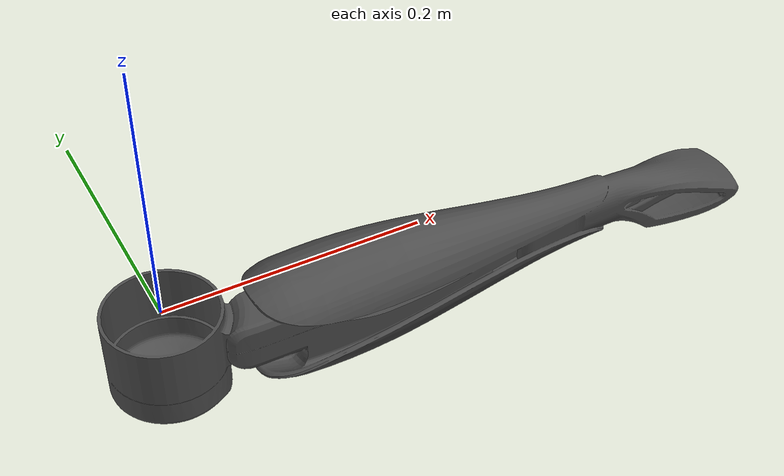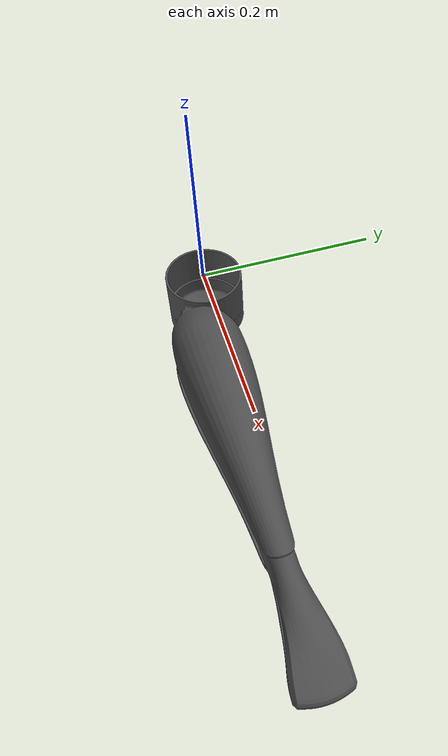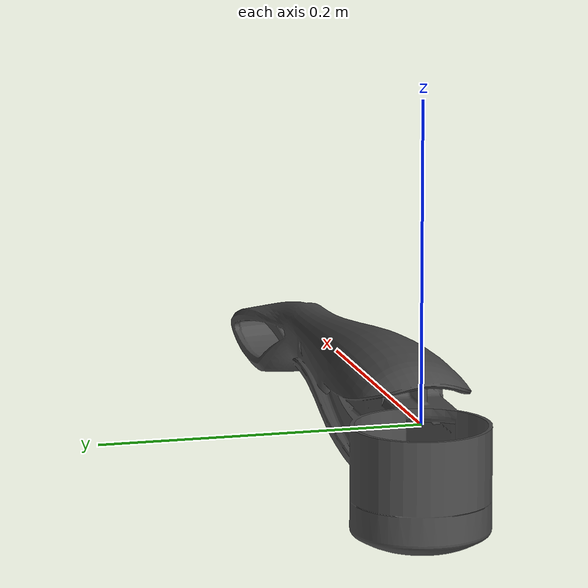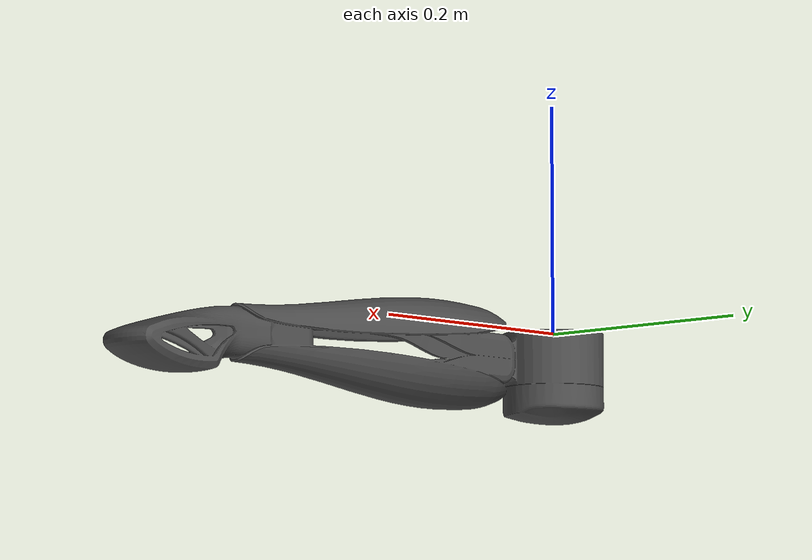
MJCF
<mujoco model="fake_forearm_right_link">
  <default>
    <default class="visual">
      <geom group="2" type="mesh" contype="0" conaffinity="0"/>
    </default>
    <default class="collision">
      <geom group="3" type="mesh"/>
    </default>
  </default>
  <asset>
    <material name="mtl_fake_forearm_right_link" specular="0.20000000000000004" shininess="1.0" rgba="0.29803922 0.29803922 0.29803922 1.0"/>
    <mesh file="fake_forearm_right_link.obj"/>
  </asset>
  <worldbody>
    <body name="fake_forearm_right_link">
      <geom material="mtl_fake_forearm_right_link" mesh="fake_forearm_right_link" class="visual"/>
      <geom mesh="fake_forearm_right_link" class="collision"/>
    </body>
  </worldbody>
</mujoco>
